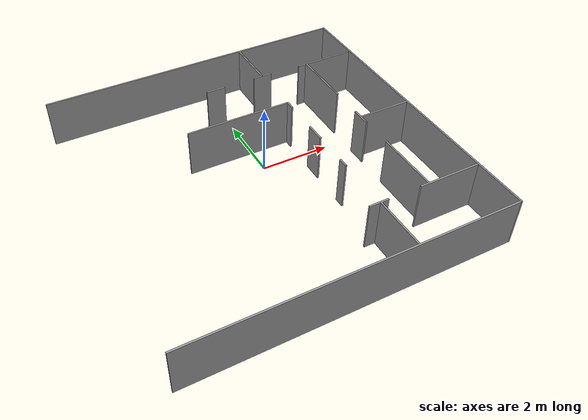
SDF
<sdf version="1.6">
 <model name="circular_corridor">
  <link name="link_0_0_clone_1_clone_0">
   <pose>4 -0 -0.05 -0.013849 3.8e-05 0</pose>
   <visual name="visual">
    <geometry><box><size>1.6 0.05 1.5</size></box></geometry>
    <material>
     <lighting>1</lighting>
     <script><uri>file://media/materials/scripts/gazebo.material</uri><name>Gazebo/Grey</name></script>
     <shader type="vertex"><normal_map>__default__</normal_map></shader>
     <ambient>0.3 0.3 0.3 1</ambient>
     <diffuse>0.7 0.7 0.7 1</diffuse>
     <specular>0.01 0.01 0.01 1</specular>
     <emissive>0 0 0 1</emissive>
    </material>
   </visual>
   <collision name="collision">
    <geometry><box><size>1.6 0.05 1.5</size></box></geometry>
    <surface>
     <friction>
      <ode><mu>1</mu><mu2>1</mu2><fdir1>0 0 0</fdir1><slip1>0</slip1><slip2>0</slip2></ode>
      <torsional>
       <coefficient>1</coefficient>
       <patch_radius>0</patch_radius>
       <surface_radius>0</surface_radius>
       <use_patch_radius>1</use_patch_radius>
       <ode><slip>0</slip></ode>
      </torsional>
     </friction>
     <bounce><restitution_coefficient>0</restitution_coefficient><threshold>1e+06</threshold></bounce>
     <contact>
      <collide_without_contact>0</collide_without_contact>
      <collide_without_contact_bitmask>1</collide_without_contact_bitmask>
      <collide_bitmask>1</collide_bitmask>
      <ode>
       <soft_cfm>0</soft_cfm>
       <soft_erp>0.2</soft_erp>
       <kp>1e+13</kp>
       <kd>1</kd>
       <max_vel>0.01</max_vel>
       <min_depth>0</min_depth>
      </ode>
      <bullet>
       <split_impulse>1</split_impulse>
       <split_impulse_penetration_threshold>-0.01</split_impulse_penetration_threshold>
       <soft_cfm>0</soft_cfm>
       <soft_erp>0.2</soft_erp>
       <kp>1e+13</kp>
       <kd>1</kd>
      </bullet>
     </contact>
    </surface>
   </collision>
  </link>
  <link name="link_0_clone">
   <pose>3.175 -0 -0.05 0 -0 -1.57081</pose>
   <visual name="visual">
    <geometry><box><size>0.6 0.05 1.5</size></box></geometry>
    <material>
     <lighting>1</lighting>
     <script><uri>file://media/materials/scripts/gazebo.material</uri><name>Gazebo/Grey</name></script>
     <shader type="vertex"><normal_map>__default__</normal_map></shader>
     <ambient>0.3 0.3 0.3 1</ambient>
     <diffuse>0.7 0.7 0.7 1</diffuse>
     <specular>0.01 0.01 0.01 1</specular>
     <emissive>0 0 0 1</emissive>
    </material>
   </visual>
   <collision name="collision">
    <geometry><box><size>0.6 0.05 1.5</size></box></geometry>
    <surface>
     <friction>
      <ode><mu>1</mu><mu2>1</mu2><fdir1>0 0 0</fdir1><slip1>0</slip1><slip2>0</slip2></ode>
      <torsional>
       <coefficient>1</coefficient>
       <patch_radius>0</patch_radius>
       <surface_radius>0</surface_radius>
       <use_patch_radius>1</use_patch_radius>
       <ode><slip>0</slip></ode>
      </torsional>
     </friction>
     <bounce><restitution_coefficient>0</restitution_coefficient><threshold>1e+06</threshold></bounce>
     <contact>
      <collide_without_contact>0</collide_without_contact>
      <collide_without_contact_bitmask>1</collide_without_contact_bitmask>
      <collide_bitmask>1</collide_bitmask>
      <ode>
       <soft_cfm>0</soft_cfm>
       <soft_erp>0.2</soft_erp>
       <kp>1e+13</kp>
       <kd>1</kd>
       <max_vel>0.01</max_vel>
       <min_depth>0</min_depth>
      </ode>
      <bullet>
       <split_impulse>1</split_impulse>
       <split_impulse_penetration_threshold>-0.01</split_impulse_penetration_threshold>
       <soft_cfm>0</soft_cfm>
       <soft_erp>0.2</soft_erp>
       <kp>1e+13</kp>
       <kd>1</kd>
      </bullet>
     </contact>
    </surface>
   </collision>
  </link>
  <link name="link_0_clone_0_clone_clone_0">
   <pose>3.85 3.2 -0.084552 0 0 -3.14158</pose>
   <visual name="visual">
    <geometry><box><size>1.9 0.05 1.5</size></box></geometry>
    <material>
     <lighting>1</lighting>
     <script><uri>file://media/materials/scripts/gazebo.material</uri><name>Gazebo/Grey</name></script>
     <shader type="vertex"><normal_map>__default__</normal_map></shader>
     <ambient>0.3 0.3 0.3 1</ambient>
     <diffuse>0.7 0.7 0.7 1</diffuse>
     <specular>0.01 0.01 0.01 1</specular>
     <emissive>0 0 0 1</emissive>
    </material>
   </visual>
   <collision name="collision">
    <geometry><box><size>1.9 0.05 1.5</size></box></geometry>
    <surface>
     <friction>
      <ode><mu>1</mu><mu2>1</mu2><fdir1>0 0 0</fdir1><slip1>0</slip1><slip2>0</slip2></ode>
      <torsional>
       <coefficient>1</coefficient>
       <patch_radius>0</patch_radius>
       <surface_radius>0</surface_radius>
       <use_patch_radius>1</use_patch_radius>
       <ode><slip>0</slip></ode>
      </torsional>
     </friction>
     <bounce><restitution_coefficient>0</restitution_coefficient><threshold>1e+06</threshold></bounce>
     <contact>
      <collide_without_contact>0</collide_without_contact>
      <collide_without_contact_bitmask>1</collide_without_contact_bitmask>
      <collide_bitmask>1</collide_bitmask>
      <ode>
       <soft_cfm>0</soft_cfm>
       <soft_erp>0.2</soft_erp>
       <kp>1e+13</kp>
       <kd>1</kd>
       <max_vel>0.01</max_vel>
       <min_depth>0</min_depth>
      </ode>
      <bullet>
       <split_impulse>1</split_impulse>
       <split_impulse_penetration_threshold>-0.01</split_impulse_penetration_threshold>
       <soft_cfm>0</soft_cfm>
       <soft_erp>0.2</soft_erp>
       <kp>1e+13</kp>
       <kd>1</kd>
      </bullet>
     </contact>
    </surface>
   </collision>
  </link>
  <link name="link_0_clone_0_clone_clone_1">
   <pose>3.85 -3.2 -0.05 0 -0 8e-06</pose>
   <visual name="visual">
    <geometry><box><size>1.9 0.05 1.5</size></box></geometry>
    <material>
     <lighting>1</lighting>
     <script><uri>file://media/materials/scripts/gazebo.material</uri><name>Gazebo/Grey</name></script>
     <shader type="vertex"><normal_map>__default__</normal_map></shader>
     <ambient>0.3 0.3 0.3 1</ambient>
     <diffuse>0.7 0.7 0.7 1</diffuse>
     <specular>0.01 0.01 0.01 1</specular>
     <emissive>0 0 0 1</emissive>
    </material>
   </visual>
   <collision name="collision">
    <geometry><box><size>1.9 0.05 1.5</size></box></geometry>
    <surface>
     <friction>
      <ode><mu>1</mu><mu2>1</mu2><fdir1>0 0 0</fdir1><slip1>0</slip1><slip2>0</slip2></ode>
      <torsional>
       <coefficient>1</coefficient>
       <patch_radius>0</patch_radius>
       <surface_radius>0</surface_radius>
       <use_patch_radius>1</use_patch_radius>
       <ode><slip>0</slip></ode>
      </torsional>
     </friction>
     <bounce><restitution_coefficient>0</restitution_coefficient><threshold>1e+06</threshold></bounce>
     <contact>
      <collide_without_contact>0</collide_without_contact>
      <collide_without_contact_bitmask>1</collide_without_contact_bitmask>
      <collide_bitmask>1</collide_bitmask>
      <ode>
       <soft_cfm>0</soft_cfm>
       <soft_erp>0.2</soft_erp>
       <kp>1e+13</kp>
       <kd>1</kd>
       <max_vel>0.01</max_vel>
       <min_depth>0</min_depth>
      </ode>
      <bullet>
       <split_impulse>1</split_impulse>
       <split_impulse_penetration_threshold>-0.01</split_impulse_penetration_threshold>
       <soft_cfm>0</soft_cfm>
       <soft_erp>0.2</soft_erp>
       <kp>1e+13</kp>
       <kd>1</kd>
      </bullet>
     </contact>
    </surface>
   </collision>
  </link>
  <link name="link_0_clone_2_clone">
   <pose>0 3.2 -0.05 1e-05 0.000178 -2.2e-05</pose>
   <visual name="visual">
    <geometry><box><size>0.6 0.05 1.5</size></box></geometry>
    <material>
     <lighting>1</lighting>
     <script><uri>file://media/materials/scripts/gazebo.material</uri><name>Gazebo/Grey</name></script>
     <shader type="vertex"><normal_map>__default__</normal_map></shader>
     <ambient>0.3 0.3 0.3 1</ambient>
     <diffuse>0.7 0.7 0.7 1</diffuse>
     <specular>0.01 0.01 0.01 1</specular>
     <emissive>0 0 0 1</emissive>
    </material>
   </visual>
   <collision name="collision">
    <geometry><box><size>0.6 0.05 1.5</size></box></geometry>
    <surface>
     <friction>
      <ode><mu>1</mu><mu2>1</mu2><fdir1>0 0 0</fdir1><slip1>0</slip1><slip2>0</slip2></ode>
      <torsional>
       <coefficient>1</coefficient>
       <patch_radius>0</patch_radius>
       <surface_radius>0</surface_radius>
       <use_patch_radius>1</use_patch_radius>
       <ode><slip>0</slip></ode>
      </torsional>
     </friction>
     <bounce><restitution_coefficient>0</restitution_coefficient><threshold>1e+06</threshold></bounce>
     <contact>
      <collide_without_contact>0</collide_without_contact>
      <collide_without_contact_bitmask>1</collide_without_contact_bitmask>
      <collide_bitmask>1</collide_bitmask>
      <ode>
       <soft_cfm>0</soft_cfm>
       <soft_erp>0.2</soft_erp>
       <kp>1e+13</kp>
       <kd>1</kd>
       <max_vel>0.01</max_vel>
       <min_depth>0</min_depth>
      </ode>
      <bullet>
       <split_impulse>1</split_impulse>
       <split_impulse_penetration_threshold>-0.01</split_impulse_penetration_threshold>
       <soft_cfm>0</soft_cfm>
       <soft_erp>0.2</soft_erp>
       <kp>1e+13</kp>
       <kd>1</kd>
      </bullet>
     </contact>
    </surface>
   </collision>
  </link>
  <link name="link_0_clone_2_clone_0">
   <pose>1.6 -3.2 -0.05 0 0 -2.2e-05</pose>
   <visual name="visual">
    <geometry><box><size>0.6 0.05 1.5</size></box></geometry>
    <material>
     <lighting>1</lighting>
     <script><uri>file://media/materials/scripts/gazebo.material</uri><name>Gazebo/Grey</name></script>
     <shader type="vertex"><normal_map>__default__</normal_map></shader>
     <ambient>0.3 0.3 0.3 1</ambient>
     <diffuse>0.7 0.7 0.7 1</diffuse>
     <specular>0.01 0.01 0.01 1</specular>
     <emissive>0 0 0 1</emissive>
    </material>
   </visual>
   <collision name="collision">
    <geometry><box><size>0.6 0.05 1.5</size></box></geometry>
    <surface>
     <friction>
      <ode><mu>1</mu><mu2>1</mu2><fdir1>0 0 0</fdir1><slip1>0</slip1><slip2>0</slip2></ode>
      <torsional>
       <coefficient>1</coefficient>
       <patch_radius>0</patch_radius>
       <surface_radius>0</surface_radius>
       <use_patch_radius>1</use_patch_radius>
       <ode><slip>0</slip></ode>
      </torsional>
     </friction>
     <bounce><restitution_coefficient>0</restitution_coefficient><threshold>1e+06</threshold></bounce>
     <contact>
      <collide_without_contact>0</collide_without_contact>
      <collide_without_contact_bitmask>1</collide_without_contact_bitmask>
      <collide_bitmask>1</collide_bitmask>
      <ode>
       <soft_cfm>0</soft_cfm>
       <soft_erp>0.2</soft_erp>
       <kp>1e+13</kp>
       <kd>1</kd>
       <max_vel>0.01</max_vel>
       <min_depth>0</min_depth>
      </ode>
      <bullet>
       <split_impulse>1</split_impulse>
       <split_impulse_penetration_threshold>-0.01</split_impulse_penetration_threshold>
       <soft_cfm>0</soft_cfm>
       <soft_erp>0.2</soft_erp>
       <kp>1e+13</kp>
       <kd>1</kd>
      </bullet>
     </contact>
    </surface>
   </collision>
  </link>
  <link name="link_0_clone_2_clone_clone">
   <pose>1.6 3.2 -0.05 0 -0 -3e-05</pose>
   <visual name="visual">
    <geometry><box><size>0.6 0.05 1.5</size></box></geometry>
    <material>
     <lighting>1</lighting>
     <script><uri>file://media/materials/scripts/gazebo.material</uri><name>Gazebo/Grey</name></script>
     <shader type="vertex"><normal_map>__default__</normal_map></shader>
     <ambient>0.3 0.3 0.3 1</ambient>
     <diffuse>0.7 0.7 0.7 1</diffuse>
     <specular>0.01 0.01 0.01 1</specular>
     <emissive>0 0 0 1</emissive>
    </material>
   </visual>
   <collision name="collision">
    <geometry><box><size>0.6 0.05 1.5</size></box></geometry>
    <surface>
     <friction>
      <ode><mu>1</mu><mu2>1</mu2><fdir1>0 0 0</fdir1><slip1>0</slip1><slip2>0</slip2></ode>
      <torsional>
       <coefficient>1</coefficient>
       <patch_radius>0</patch_radius>
       <surface_radius>0</surface_radius>
       <use_patch_radius>1</use_patch_radius>
       <ode><slip>0</slip></ode>
      </torsional>
     </friction>
     <bounce><restitution_coefficient>0</restitution_coefficient><threshold>1e+06</threshold></bounce>
     <contact>
      <collide_without_contact>0</collide_without_contact>
      <collide_without_contact_bitmask>1</collide_without_contact_bitmask>
      <collide_bitmask>1</collide_bitmask>
      <ode>
       <soft_cfm>0</soft_cfm>
       <soft_erp>0.2</soft_erp>
       <kp>1e+13</kp>
       <kd>1</kd>
       <max_vel>0.01</max_vel>
       <min_depth>0</min_depth>
      </ode>
      <bullet>
       <split_impulse>1</split_impulse>
       <split_impulse_penetration_threshold>-0.01</split_impulse_penetration_threshold>
       <soft_cfm>0</soft_cfm>
       <soft_erp>0.2</soft_erp>
       <kp>1e+13</kp>
       <kd>1</kd>
      </bullet>
     </contact>
    </surface>
   </collision>
  </link>
  <link name="link_0_clone_clone">
   <pose>3.175 2.225 -0.05 0 0 -1.57082</pose>
   <visual name="visual">
    <geometry><box><size>1.9 0.05 1.5</size></box></geometry>
    <material>
     <lighting>1</lighting>
     <script><uri>file://media/materials/scripts/gazebo.material</uri><name>Gazebo/Grey</name></script>
     <shader type="vertex"><normal_map>__default__</normal_map></shader>
     <ambient>0.3 0.3 0.3 1</ambient>
     <diffuse>0.7 0.7 0.7 1</diffuse>
     <specular>0.01 0.01 0.01 1</specular>
     <emissive>0 0 0 1</emissive>
    </material>
   </visual>
   <collision name="collision">
    <geometry><box><size>1.9 0.05 1.5</size></box></geometry>
    <surface>
     <friction>
      <ode><mu>1</mu><mu2>1</mu2><fdir1>0 0 0</fdir1><slip1>0</slip1><slip2>0</slip2></ode>
      <torsional>
       <coefficient>1</coefficient>
       <patch_radius>0</patch_radius>
       <surface_radius>0</surface_radius>
       <use_patch_radius>1</use_patch_radius>
       <ode><slip>0</slip></ode>
      </torsional>
     </friction>
     <bounce><restitution_coefficient>0</restitution_coefficient><threshold>1e+06</threshold></bounce>
     <contact>
      <collide_without_contact>0</collide_without_contact>
      <collide_without_contact_bitmask>1</collide_without_contact_bitmask>
      <collide_bitmask>1</collide_bitmask>
      <ode>
       <soft_cfm>0</soft_cfm>
       <soft_erp>0.2</soft_erp>
       <kp>1e+13</kp>
       <kd>1</kd>
       <max_vel>0.01</max_vel>
       <min_depth>0</min_depth>
      </ode>
      <bullet>
       <split_impulse>1</split_impulse>
       <split_impulse_penetration_threshold>-0.01</split_impulse_penetration_threshold>
       <soft_cfm>0</soft_cfm>
       <soft_erp>0.2</soft_erp>
       <kp>1e+13</kp>
       <kd>1</kd>
      </bullet>
     </contact>
    </surface>
   </collision>
  </link>
  <link name="link_0_clone_clone_0">
   <pose>3.175 -2.225 -0.050008 0 -0 -1.57083</pose>
   <visual name="visual">
    <geometry><box><size>1.9 0.05 1.5</size></box></geometry>
    <material>
     <lighting>1</lighting>
     <script><uri>file://media/materials/scripts/gazebo.material</uri><name>Gazebo/Grey</name></script>
     <shader type="vertex"><normal_map>__default__</normal_map></shader>
     <ambient>0.3 0.3 0.3 1</ambient>
     <diffuse>0.7 0.7 0.7 1</diffuse>
     <specular>0.01 0.01 0.01 1</specular>
     <emissive>0 0 0 1</emissive>
    </material>
   </visual>
   <collision name="collision">
    <geometry><box><size>1.9 0.05 1.5</size></box></geometry>
    <surface>
     <friction>
      <ode><mu>1</mu><mu2>1</mu2><fdir1>0 0 0</fdir1><slip1>0</slip1><slip2>0</slip2></ode>
      <torsional>
       <coefficient>1</coefficient>
       <patch_radius>0</patch_radius>
       <surface_radius>0</surface_radius>
       <use_patch_radius>1</use_patch_radius>
       <ode><slip>0</slip></ode>
      </torsional>
     </friction>
     <bounce><restitution_coefficient>0</restitution_coefficient><threshold>1e+06</threshold></bounce>
     <contact>
      <collide_without_contact>0</collide_without_contact>
      <collide_without_contact_bitmask>1</collide_without_contact_bitmask>
      <collide_bitmask>1</collide_bitmask>
      <ode>
       <soft_cfm>0</soft_cfm>
       <soft_erp>0.2</soft_erp>
       <kp>1e+13</kp>
       <kd>1</kd>
       <max_vel>0.01</max_vel>
       <min_depth>0</min_depth>
      </ode>
      <bullet>
       <split_impulse>1</split_impulse>
       <split_impulse_penetration_threshold>-0.01</split_impulse_penetration_threshold>
       <soft_cfm>0</soft_cfm>
       <soft_erp>0.2</soft_erp>
       <kp>1e+13</kp>
       <kd>1</kd>
      </bullet>
     </contact>
    </surface>
   </collision>
  </link>
  <link name="link_clone">
   <pose>0 1.6 -0.05 0 -0 0</pose>
   <visual name="visual">
    <geometry><box><size>3.2 0.05 1.5</size></box></geometry>
    <material>
     <script><name>Gazebo/Grey</name><uri>file://media/materials/scripts/gazebo.material</uri></script>
     <shader type="vertex"><normal_map>__default__</normal_map></shader>
     <ambient>0.3 0.3 0.3 1</ambient>
     <diffuse>0.7 0.7 0.7 1</diffuse>
     <specular>0.01 0.01 0.01 1</specular>
     <emissive>0 0 0 1</emissive>
    </material>
   </visual>
   <collision name="collision">
    <geometry><box><size>3.2 0.05 1.5</size></box></geometry>
    <surface>
     <friction>
      <ode><mu>1</mu><mu2>1</mu2><fdir1>0 0 0</fdir1><slip1>0</slip1><slip2>0</slip2></ode>
      <torsional>
       <coefficient>1</coefficient>
       <patch_radius>0</patch_radius>
       <surface_radius>0</surface_radius>
       <use_patch_radius>1</use_patch_radius>
       <ode><slip>0</slip></ode>
      </torsional>
     </friction>
     <bounce><restitution_coefficient>0</restitution_coefficient><threshold>1e+06</threshold></bounce>
     <contact>
      <collide_without_contact>0</collide_without_contact>
      <collide_without_contact_bitmask>1</collide_without_contact_bitmask>
      <collide_bitmask>1</collide_bitmask>
      <ode>
       <soft_cfm>0</soft_cfm>
       <soft_erp>0.2</soft_erp>
       <kp>1e+13</kp>
       <kd>1</kd>
       <max_vel>0.01</max_vel>
       <min_depth>0</min_depth>
      </ode>
      <bullet>
       <split_impulse>1</split_impulse>
       <split_impulse_penetration_threshold>-0.01</split_impulse_penetration_threshold>
       <soft_cfm>0</soft_cfm>
       <soft_erp>0.2</soft_erp>
       <kp>1e+13</kp>
       <kd>1</kd>
      </bullet>
     </contact>
    </surface>
   </collision>
  </link>
  <link name="link_clone_clone">
   <pose>1.625 -0 -0.05 0 2e-05 -1.5708</pose>
   <visual name="visual">
    <geometry><box><size>0.6 0.05 1.5</size></box></geometry>
    <material>
     <script><name>Gazebo/Grey</name><uri>file://media/materials/scripts/gazebo.material</uri></script>
     <shader type="vertex"><normal_map>__default__</normal_map></shader>
     <ambient>0.3 0.3 0.3 1</ambient>
     <diffuse>0.7 0.7 0.7 1</diffuse>
     <specular>0.01 0.01 0.01 1</specular>
     <emissive>0 0 0 1</emissive>
    </material>
   </visual>
   <collision name="collision">
    <geometry><box><size>0.6 0.05 1.5</size></box></geometry>
    <surface>
     <friction>
      <ode><mu>1</mu><mu2>1</mu2><fdir1>0 0 0</fdir1><slip1>0</slip1><slip2>0</slip2></ode>
      <torsional>
       <coefficient>1</coefficient>
       <patch_radius>0</patch_radius>
       <surface_radius>0</surface_radius>
       <use_patch_radius>1</use_patch_radius>
       <ode><slip>0</slip></ode>
      </torsional>
     </friction>
     <bounce><restitution_coefficient>0</restitution_coefficient><threshold>1e+06</threshold></bounce>
     <contact>
      <collide_without_contact>0</collide_without_contact>
      <collide_without_contact_bitmask>1</collide_without_contact_bitmask>
      <collide_bitmask>1</collide_bitmask>
      <ode>
       <soft_cfm>0</soft_cfm>
       <soft_erp>0.2</soft_erp>
       <kp>1e+13</kp>
       <kd>1</kd>
       <max_vel>0.01</max_vel>
       <min_depth>0</min_depth>
      </ode>
      <bullet>
       <split_impulse>1</split_impulse>
       <split_impulse_penetration_threshold>-0.01</split_impulse_penetration_threshold>
       <soft_cfm>0</soft_cfm>
       <soft_erp>0.2</soft_erp>
       <kp>1e+13</kp>
       <kd>1</kd>
      </bullet>
     </contact>
    </surface>
   </collision>
  </link>
  <link name="link_clone_clone_0">
   <pose>0 4.825 -0.05 0 -0 0</pose>
   <visual name="visual">
    <geometry><box><size>9.6 0.05 1.5</size></box></geometry>
    <material>
     <script><name>Gazebo/Grey</name><uri>file://media/materials/scripts/gazebo.material</uri></script>
     <shader type="vertex"><normal_map>__default__</normal_map></shader>
     <ambient>0.3 0.3 0.3 1</ambient>
     <diffuse>0.7 0.7 0.7 1</diffuse>
     <specular>0.01 0.01 0.01 1</specular>
     <emissive>0 0 0 1</emissive>
    </material>
   </visual>
   <collision name="collision">
    <geometry><box><size>9.6 0.05 1.5</size></box></geometry>
    <surface>
     <friction>
      <ode><mu>1</mu><mu2>1</mu2><fdir1>0 0 0</fdir1><slip1>0</slip1><slip2>0</slip2></ode>
      <torsional>
       <coefficient>1</coefficient>
       <patch_radius>0</patch_radius>
       <surface_radius>0</surface_radius>
       <use_patch_radius>1</use_patch_radius>
       <ode><slip>0</slip></ode>
      </torsional>
     </friction>
     <bounce><restitution_coefficient>0</restitution_coefficient><threshold>1e+06</threshold></bounce>
     <contact>
      <collide_without_contact>0</collide_without_contact>
      <collide_without_contact_bitmask>1</collide_without_contact_bitmask>
      <collide_bitmask>1</collide_bitmask>
      <ode>
       <soft_cfm>0</soft_cfm>
       <soft_erp>0.2</soft_erp>
       <kp>1e+13</kp>
       <kd>1</kd>
       <max_vel>0.01</max_vel>
       <min_depth>0</min_depth>
      </ode>
      <bullet>
       <split_impulse>1</split_impulse>
       <split_impulse_penetration_threshold>-0.01</split_impulse_penetration_threshold>
       <soft_cfm>0</soft_cfm>
       <soft_erp>0.2</soft_erp>
       <kp>1e+13</kp>
       <kd>1</kd>
      </bullet>
     </contact>
    </surface>
   </collision>
  </link>
  <link name="link_clone_clone_0_clone">
   <pose>-0 -4.825 -0.05 0 -0 0</pose>
   <visual name="visual">
    <geometry><box><size>9.6 0.05 1.5</size></box></geometry>
    <material>
     <script><name>Gazebo/Grey</name><uri>file://media/materials/scripts/gazebo.material</uri></script>
     <shader type="vertex"><normal_map>__default__</normal_map></shader>
     <ambient>0.3 0.3 0.3 1</ambient>
     <diffuse>0.7 0.7 0.7 1</diffuse>
     <specular>0.01 0.01 0.01 1</specular>
     <emissive>0 0 0 1</emissive>
    </material>
   </visual>
   <collision name="collision">
    <geometry><box><size>9.6 0.05 1.5</size></box></geometry>
    <surface>
     <friction>
      <ode><mu>1</mu><mu2>1</mu2><fdir1>0 0 0</fdir1><slip1>0</slip1><slip2>0</slip2></ode>
      <torsional>
       <coefficient>1</coefficient>
       <patch_radius>0</patch_radius>
       <surface_radius>0</surface_radius>
       <use_patch_radius>1</use_patch_radius>
       <ode><slip>0</slip></ode>
      </torsional>
     </friction>
     <bounce><restitution_coefficient>0</restitution_coefficient><threshold>1e+06</threshold></bounce>
     <contact>
      <collide_without_contact>0</collide_without_contact>
      <collide_without_contact_bitmask>1</collide_without_contact_bitmask>
      <collide_bitmask>1</collide_bitmask>
      <ode>
       <soft_cfm>0</soft_cfm>
       <soft_erp>0.2</soft_erp>
       <kp>1e+13</kp>
       <kd>1</kd>
       <max_vel>0.01</max_vel>
       <min_depth>0</min_depth>
      </ode>
      <bullet>
       <split_impulse>1</split_impulse>
       <split_impulse_penetration_threshold>-0.01</split_impulse_penetration_threshold>
       <soft_cfm>0</soft_cfm>
       <soft_erp>0.2</soft_erp>
       <kp>1e+13</kp>
       <kd>1</kd>
      </bullet>
     </contact>
    </surface>
   </collision>
  </link>
  <link name="link_clone_clone_0_clone_clone_0">
   <pose>4.825 -0 -0.05 -0 -0 -1.5708</pose>
   <visual name="visual">
    <geometry><box><size>9.7 0.05 1.5</size></box></geometry>
    <material>
     <script><name>Gazebo/Grey</name><uri>file://media/materials/scripts/gazebo.material</uri></script>
     <shader type="vertex"><normal_map>__default__</normal_map></shader>
     <ambient>0.3 0.3 0.3 1</ambient>
     <diffuse>0.7 0.7 0.7 1</diffuse>
     <specular>0.01 0.01 0.01 1</specular>
     <emissive>0 0 0 1</emissive>
    </material>
   </visual>
   <collision name="collision">
    <geometry><box><size>9.7 0.05 1.5</size></box></geometry>
    <surface>
     <friction>
      <ode><mu>1</mu><mu2>1</mu2><fdir1>0 0 0</fdir1><slip1>0</slip1><slip2>0</slip2></ode>
      <torsional>
       <coefficient>1</coefficient>
       <patch_radius>0</patch_radius>
       <surface_radius>0</surface_radius>
       <use_patch_radius>1</use_patch_radius>
       <ode><slip>0</slip></ode>
      </torsional>
     </friction>
     <bounce><restitution_coefficient>0</restitution_coefficient><threshold>1e+06</threshold></bounce>
     <contact>
      <collide_without_contact>0</collide_without_contact>
      <collide_without_contact_bitmask>1</collide_without_contact_bitmask>
      <collide_bitmask>1</collide_bitmask>
      <ode>
       <soft_cfm>0</soft_cfm>
       <soft_erp>0.2</soft_erp>
       <kp>1e+13</kp>
       <kd>1</kd>
       <max_vel>0.01</max_vel>
       <min_depth>0</min_depth>
      </ode>
      <bullet>
       <split_impulse>1</split_impulse>
       <split_impulse_penetration_threshold>-0.01</split_impulse_penetration_threshold>
       <soft_cfm>0</soft_cfm>
       <soft_erp>0.2</soft_erp>
       <kp>1e+13</kp>
       <kd>1</kd>
      </bullet>
     </contact>
    </surface>
   </collision>
  </link>
  <link name="link_clone_clone_clone_clone_1">
   <pose>1.625 -1.475 -0.05 0 4e-05 -1.5708</pose>
   <visual name="visual">
    <geometry><box><size>0.3 0.05 1.5</size></box></geometry>
    <material>
     <script><name>Gazebo/Grey</name><uri>file://media/materials/scripts/gazebo.material</uri></script>
     <shader type="vertex"><normal_map>__default__</normal_map></shader>
     <ambient>0.3 0.3 0.3 1</ambient>
     <diffuse>0.7 0.7 0.7 1</diffuse>
     <specular>0.01 0.01 0.01 1</specular>
     <emissive>0 0 0 1</emissive>
    </material>
   </visual>
   <collision name="collision">
    <geometry><box><size>0.3 0.05 1.5</size></box></geometry>
    <surface>
     <friction>
      <ode><mu>1</mu><mu2>1</mu2><fdir1>0 0 0</fdir1><slip1>0</slip1><slip2>0</slip2></ode>
      <torsional>
       <coefficient>1</coefficient>
       <patch_radius>0</patch_radius>
       <surface_radius>0</surface_radius>
       <use_patch_radius>1</use_patch_radius>
       <ode><slip>0</slip></ode>
      </torsional>
     </friction>
     <bounce><restitution_coefficient>0</restitution_coefficient><threshold>1e+06</threshold></bounce>
     <contact>
      <collide_without_contact>0</collide_without_contact>
      <collide_without_contact_bitmask>1</collide_without_contact_bitmask>
      <collide_bitmask>1</collide_bitmask>
      <ode>
       <soft_cfm>0</soft_cfm>
       <soft_erp>0.2</soft_erp>
       <kp>1e+13</kp>
       <kd>1</kd>
       <max_vel>0.01</max_vel>
       <min_depth>0</min_depth>
      </ode>
      <bullet>
       <split_impulse>1</split_impulse>
       <split_impulse_penetration_threshold>-0.01</split_impulse_penetration_threshold>
       <soft_cfm>0</soft_cfm>
       <soft_erp>0.2</soft_erp>
       <kp>1e+13</kp>
       <kd>1</kd>
      </bullet>
     </contact>
    </surface>
   </collision>
  </link>
  <link name="link_clone_clone_clone_clone_2">
   <pose>1.625 1.475 -0.05 0 4e-05 -1.5708</pose>
   <visual name="visual">
    <geometry><box><size>0.3 0.05 1.5</size></box></geometry>
    <material>
     <script><name>Gazebo/Grey</name><uri>file://media/materials/scripts/gazebo.material</uri></script>
     <shader type="vertex"><normal_map>__default__</normal_map></shader>
     <ambient>0.3 0.3 0.3 1</ambient>
     <diffuse>0.7 0.7 0.7 1</diffuse>
     <specular>0.01 0.01 0.01 1</specular>
     <emissive>0 0 0 1</emissive>
    </material>
   </visual>
   <collision name="collision">
    <geometry><box><size>0.3 0.05 1.5</size></box></geometry>
    <surface>
     <friction>
      <ode><mu>1</mu><mu2>1</mu2><fdir1>0 0 0</fdir1><slip1>0</slip1><slip2>0</slip2></ode>
      <torsional>
       <coefficient>1</coefficient>
       <patch_radius>0</patch_radius>
       <surface_radius>0</surface_radius>
       <use_patch_radius>1</use_patch_radius>
       <ode><slip>0</slip></ode>
      </torsional>
     </friction>
     <bounce><restitution_coefficient>0</restitution_coefficient><threshold>1e+06</threshold></bounce>
     <contact>
      <collide_without_contact>0</collide_without_contact>
      <collide_without_contact_bitmask>1</collide_without_contact_bitmask>
      <collide_bitmask>1</collide_bitmask>
      <ode>
       <soft_cfm>0</soft_cfm>
       <soft_erp>0.2</soft_erp>
       <kp>1e+13</kp>
       <kd>1</kd>
       <max_vel>0.01</max_vel>
       <min_depth>0</min_depth>
      </ode>
      <bullet>
       <split_impulse>1</split_impulse>
       <split_impulse_penetration_threshold>-0.01</split_impulse_penetration_threshold>
       <soft_cfm>0</soft_cfm>
       <soft_erp>0.2</soft_erp>
       <kp>1e+13</kp>
       <kd>1</kd>
      </bullet>
     </contact>
    </surface>
   </collision>
  </link>
  <link name="link_clone_clone_clone_clone_3_clone">
   <pose>1.65026 -4 -0.05 0 0 -1.57074</pose>
   <visual name="visual">
    <geometry><box><size>1.6 0.05 1.5</size></box></geometry>
    <material>
     <script><name>Gazebo/Grey</name><uri>file://media/materials/scripts/gazebo.material</uri></script>
     <shader type="vertex"><normal_map>__default__</normal_map></shader>
     <ambient>0.3 0.3 0.3 1</ambient>
     <diffuse>0.7 0.7 0.7 1</diffuse>
     <specular>0.01 0.01 0.01 1</specular>
     <emissive>0 0 0 1</emissive>
    </material>
   </visual>
   <collision name="collision">
    <geometry><box><size>1.6 0.05 1.5</size></box></geometry>
    <surface>
     <friction>
      <ode><mu>1</mu><mu2>1</mu2><fdir1>0 0 0</fdir1><slip1>0</slip1><slip2>0</slip2></ode>
      <torsional>
       <coefficient>1</coefficient>
       <patch_radius>0</patch_radius>
       <surface_radius>0</surface_radius>
       <use_patch_radius>1</use_patch_radius>
       <ode><slip>0</slip></ode>
      </torsional>
     </friction>
     <bounce><restitution_coefficient>0</restitution_coefficient><threshold>1e+06</threshold></bounce>
     <contact>
      <collide_without_contact>0</collide_without_contact>
      <collide_without_contact_bitmask>1</collide_without_contact_bitmask>
      <collide_bitmask>1</collide_bitmask>
      <ode>
       <soft_cfm>0</soft_cfm>
       <soft_erp>0.2</soft_erp>
       <kp>1e+13</kp>
       <kd>1</kd>
       <max_vel>0.01</max_vel>
       <min_depth>0</min_depth>
      </ode>
      <bullet>
       <split_impulse>1</split_impulse>
       <split_impulse_penetration_threshold>-0.01</split_impulse_penetration_threshold>
       <soft_cfm>0</soft_cfm>
       <soft_erp>0.2</soft_erp>
       <kp>1e+13</kp>
       <kd>1</kd>
      </bullet>
     </contact>
    </surface>
   </collision>
  </link>
  <link name="link_clone_clone_clone_clone_3_clone_0">
   <pose>1.58871 4 -0.05 0 0 -1.57086</pose>
   <visual name="visual">
    <geometry><box><size>1.6 0.05 1.5</size></box></geometry>
    <material>
     <script><name>Gazebo/Grey</name><uri>file://media/materials/scripts/gazebo.material</uri></script>
     <shader type="vertex"><normal_map>__default__</normal_map></shader>
     <ambient>0.3 0.3 0.3 1</ambient>
     <diffuse>0.7 0.7 0.7 1</diffuse>
     <specular>0.01 0.01 0.01 1</specular>
     <emissive>0 0 0 1</emissive>
    </material>
   </visual>
   <collision name="collision">
    <geometry><box><size>1.6 0.05 1.5</size></box></geometry>
    <surface>
     <friction>
      <ode><mu>1</mu><mu2>1</mu2><fdir1>0 0 0</fdir1><slip1>0</slip1><slip2>0</slip2></ode>
      <torsional>
       <coefficient>1</coefficient>
       <patch_radius>0</patch_radius>
       <surface_radius>0</surface_radius>
       <use_patch_radius>1</use_patch_radius>
       <ode><slip>0</slip></ode>
      </torsional>
     </friction>
     <bounce><restitution_coefficient>0</restitution_coefficient><threshold>1e+06</threshold></bounce>
     <contact>
      <collide_without_contact>0</collide_without_contact>
      <collide_without_contact_bitmask>1</collide_without_contact_bitmask>
      <collide_bitmask>1</collide_bitmask>
      <ode>
       <soft_cfm>0</soft_cfm>
       <soft_erp>0.2</soft_erp>
       <kp>1e+13</kp>
       <kd>1</kd>
       <max_vel>0.01</max_vel>
       <min_depth>0</min_depth>
      </ode>
      <bullet>
       <split_impulse>1</split_impulse>
       <split_impulse_penetration_threshold>-0.01</split_impulse_penetration_threshold>
       <soft_cfm>0</soft_cfm>
       <soft_erp>0.2</soft_erp>
       <kp>1e+13</kp>
       <kd>1</kd>
      </bullet>
     </contact>
    </surface>
   </collision>
  </link>
  <static>1</static>
  <allow_auto_disable>0</allow_auto_disable>
 </model>
</sdf>
